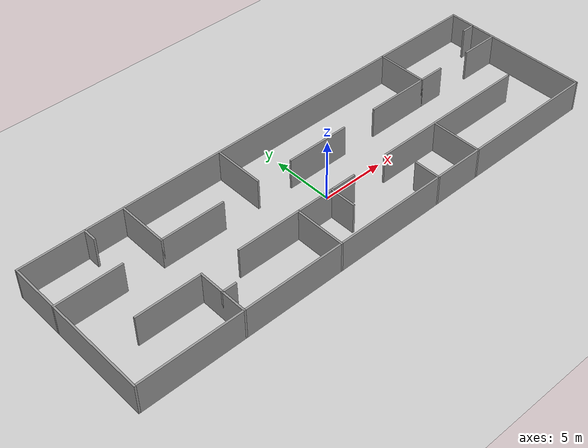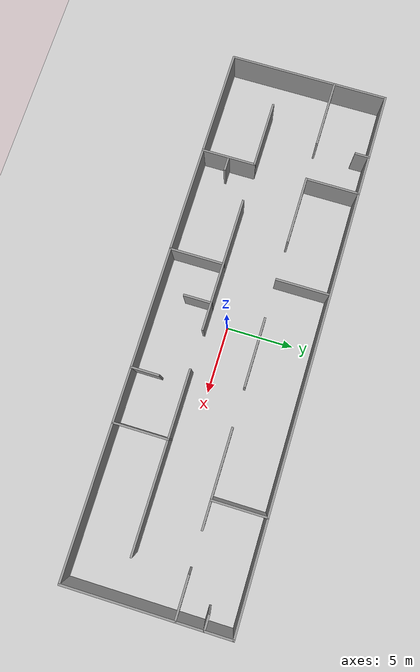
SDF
<sdf version="1.6">
 <world name="default">
  <light name="sun" type="directional">
   <pose>0 0 10 0 -0 0</pose>
   <diffuse>0.8 0.8 0.8 1</diffuse>
   <specular>0.1 0.1 0.1 1</specular>
   <attenuation>
    <range>1000</range>
    <constant>0.9</constant>
    <linear>0.01</linear>
    <quadratic>0.001</quadratic>
   </attenuation>
   <direction>-0.5 0.5 -1</direction>
  </light>
  <model name="ground_plane">
   <static>1</static>
   <link name="link">
    <collision name="collision">
     <geometry><plane><normal>0 0 1</normal><size>100 100</size></plane></geometry>
     <surface><friction><ode><mu>100</mu><mu2>50</mu2></ode></friction></surface>
    </collision>
    <visual name="visual">
     <cast_shadows>0</cast_shadows>
     <geometry><plane><normal>0 0 1</normal><size>100 100</size></plane></geometry>
     <material>
      <script><uri>file://media/materials/scripts/gazebo.material</uri><name>Gazebo/Grey</name></script>
     </material>
    </visual>
   </link>
  </model>
  <gravity>0 0 -9.8</gravity>
  <magnetic_field>6e-06 2.3e-05 -4.2e-05</magnetic_field>
  <atmosphere type="adiabatic"/>
  <physics name="default_physics" default="0" type="ode">
   <max_step_size>0.001</max_step_size>
   <real_time_factor>1</real_time_factor>
   <real_time_update_rate>1000</real_time_update_rate>
  </physics>
  <scene><ambient>0.4 0.4 0.4 1</ambient><background>0.7 0.7 0.7 1</background><shadows>1</shadows></scene>
  <spherical_coordinates>
   <surface_model>EARTH_WGS84</surface_model>
   <latitude_deg>0</latitude_deg>
   <longitude_deg>0</longitude_deg>
   <elevation>0</elevation>
   <heading_deg>0</heading_deg>
  </spherical_coordinates>
  <model name="test">
   <link name="Wall_0">
    <collision name="Wall_0_Collision">
     <geometry><box><size>40.15 0.15 2.5</size></box></geometry>
     <pose>0 0 1.25 0 -0 0</pose>
    </collision>
    <visual name="Wall_0_Visual">
     <pose>0 0 1.25 0 -0 0</pose>
     <geometry><box><size>40.15 0.15 2.5</size></box></geometry>
     <material>
      <script><uri>file://media/materials/scripts/gazebo.material</uri><name>Gazebo/Grey</name></script>
      <ambient>1 1 1 1</ambient>
     </material>
    </visual>
    <pose>0.0 6.5 0 0 -0 0.00000</pose>
   </link>
   <link name="Wall_1">
    <collision name="Wall_1_Collision">
     <geometry><box><size>1.15 0.15 2.5</size></box></geometry>
     <pose>0 0 1.25 0 -0 0</pose>
    </collision>
    <visual name="Wall_1_Visual">
     <pose>0 0 1.25 0 -0 0</pose>
     <geometry><box><size>1.15 0.15 2.5</size></box></geometry>
     <material>
      <script><uri>file://media/materials/scripts/gazebo.material</uri><name>Gazebo/Grey</name></script>
      <ambient>1 1 1 1</ambient>
     </material>
    </visual>
    <pose>19.5 4.5 0 0 -0 0.00000</pose>
   </link>
   <link name="Wall_2">
    <collision name="Wall_2_Collision">
     <geometry><box><size>5.15 0.15 2.5</size></box></geometry>
     <pose>0 0 1.25 0 -0 0</pose>
    </collision>
    <visual name="Wall_2_Visual">
     <pose>0 0 1.25 0 -0 0</pose>
     <geometry><box><size>5.15 0.15 2.5</size></box></geometry>
     <material>
      <script><uri>file://media/materials/scripts/gazebo.material</uri><name>Gazebo/Grey</name></script>
      <ambient>1 1 1 1</ambient>
     </material>
    </visual>
    <pose>-17.5 2.5 0 0 -0 0.00000</pose>
   </link>
   <link name="Wall_3">
    <collision name="Wall_3_Collision">
     <geometry><box><size>5.15 0.15 2.5</size></box></geometry>
     <pose>0 0 1.25 0 -0 0</pose>
    </collision>
    <visual name="Wall_3_Visual">
     <pose>0 0 1.25 0 -0 0</pose>
     <geometry><box><size>5.15 0.15 2.5</size></box></geometry>
     <material>
      <script><uri>file://media/materials/scripts/gazebo.material</uri><name>Gazebo/Grey</name></script>
      <ambient>1 1 1 1</ambient>
     </material>
    </visual>
    <pose>-9.5 2.5 0 0 -0 0.00000</pose>
   </link>
   <link name="Wall_4">
    <collision name="Wall_4_Collision">
     <geometry><box><size>5.15 0.15 2.5</size></box></geometry>
     <pose>0 0 1.25 0 -0 0</pose>
    </collision>
    <visual name="Wall_4_Visual">
     <pose>0 0 1.25 0 -0 0</pose>
     <geometry><box><size>5.15 0.15 2.5</size></box></geometry>
     <material>
      <script><uri>file://media/materials/scripts/gazebo.material</uri><name>Gazebo/Grey</name></script>
      <ambient>1 1 1 1</ambient>
     </material>
    </visual>
    <pose>1.5 2.5 0 0 -0 0.00000</pose>
   </link>
   <link name="Wall_5">
    <collision name="Wall_5_Collision">
     <geometry><box><size>7.15 0.15 2.5</size></box></geometry>
     <pose>0 0 1.25 0 -0 0</pose>
    </collision>
    <visual name="Wall_5_Visual">
     <pose>0 0 1.25 0 -0 0</pose>
     <geometry><box><size>7.15 0.15 2.5</size></box></geometry>
     <material>
      <script><uri>file://media/materials/scripts/gazebo.material</uri><name>Gazebo/Grey</name></script>
      <ambient>1 1 1 1</ambient>
     </material>
    </visual>
    <pose>10.5 2.5 0 0 -0 0.00000</pose>
   </link>
   <link name="Wall_6">
    <collision name="Wall_6_Collision">
     <geometry><box><size>3.15 0.15 2.5</size></box></geometry>
     <pose>0 0 1.25 0 -0 0</pose>
    </collision>
    <visual name="Wall_6_Visual">
     <pose>0 0 1.25 0 -0 0</pose>
     <geometry><box><size>3.15 0.15 2.5</size></box></geometry>
     <material>
      <script><uri>file://media/materials/scripts/gazebo.material</uri><name>Gazebo/Grey</name></script>
      <ambient>1 1 1 1</ambient>
     </material>
    </visual>
    <pose>18.5 2.5 0 0 -0 0.00000</pose>
   </link>
   <link name="Wall_7">
    <collision name="Wall_7_Collision">
     <geometry><box><size>5.15 0.15 2.5</size></box></geometry>
     <pose>0 0 1.25 0 -0 0</pose>
    </collision>
    <visual name="Wall_7_Visual">
     <pose>0 0 1.25 0 -0 0</pose>
     <geometry><box><size>5.15 0.15 2.5</size></box></geometry>
     <material>
      <script><uri>file://media/materials/scripts/gazebo.material</uri><name>Gazebo/Grey</name></script>
      <ambient>1 1 1 1</ambient>
     </material>
    </visual>
    <pose>-14.5 -1.5 0 0 -0 0.00000</pose>
   </link>
   <link name="Wall_8">
    <collision name="Wall_8_Collision">
     <geometry><box><size>10.15 0.15 2.5</size></box></geometry>
     <pose>0 0 1.25 0 -0 0</pose>
    </collision>
    <visual name="Wall_8_Visual">
     <pose>0 0 1.25 0 -0 0</pose>
     <geometry><box><size>10.15 0.15 2.5</size></box></geometry>
     <material>
      <script><uri>file://media/materials/scripts/gazebo.material</uri><name>Gazebo/Grey</name></script>
      <ambient>1 1 1 1</ambient>
     </material>
    </visual>
    <pose>-4.0 -1.5 0 0 -0 0.00000</pose>
   </link>
   <link name="Wall_9">
    <collision name="Wall_9_Collision">
     <geometry><box><size>13.15 0.15 2.5</size></box></geometry>
     <pose>0 0 1.25 0 -0 0</pose>
    </collision>
    <visual name="Wall_9_Visual">
     <pose>0 0 1.25 0 -0 0</pose>
     <geometry><box><size>13.15 0.15 2.5</size></box></geometry>
     <material>
      <script><uri>file://media/materials/scripts/gazebo.material</uri><name>Gazebo/Grey</name></script>
      <ambient>1 1 1 1</ambient>
     </material>
    </visual>
    <pose>10.5 -1.5 0 0 -0 0.00000</pose>
   </link>
   <link name="Wall_10">
    <collision name="Wall_10_Collision">
     <geometry><box><size>1.15 0.15 2.5</size></box></geometry>
     <pose>0 0 1.25 0 -0 0</pose>
    </collision>
    <visual name="Wall_10_Visual">
     <pose>0 0 1.25 0 -0 0</pose>
     <geometry><box><size>1.15 0.15 2.5</size></box></geometry>
     <material>
      <script><uri>file://media/materials/scripts/gazebo.material</uri><name>Gazebo/Grey</name></script>
      <ambient>1 1 1 1</ambient>
     </material>
    </visual>
    <pose>-11.5 -3.5 0 0 -0 0.00000</pose>
   </link>
   <link name="Wall_11">
    <collision name="Wall_11_Collision">
     <geometry><box><size>40.15 0.15 2.5</size></box></geometry>
     <pose>0 0 1.25 0 -0 0</pose>
    </collision>
    <visual name="Wall_11_Visual">
     <pose>0 0 1.25 0 -0 0</pose>
     <geometry><box><size>40.15 0.15 2.5</size></box></geometry>
     <material>
      <script><uri>file://media/materials/scripts/gazebo.material</uri><name>Gazebo/Grey</name></script>
      <ambient>1 1 1 1</ambient>
     </material>
    </visual>
    <pose>0.0 -5.5 0 0 -0 0.00000</pose>
   </link>
   <link name="Wall_12">
    <collision name="Wall_12_Collision">
     <geometry><box><size>12.15 0.15 2.5</size></box></geometry>
     <pose>0 0 1.25 0 -0 0</pose>
    </collision>
    <visual name="Wall_12_Visual">
     <pose>0 0 1.25 0 -0 0</pose>
     <geometry><box><size>12.15 0.15 2.5</size></box></geometry>
     <material>
      <script><uri>file://media/materials/scripts/gazebo.material</uri><name>Gazebo/Grey</name></script>
      <ambient>1 1 1 1</ambient>
     </material>
    </visual>
    <pose>-20.0 0.5 0 0 -0 -1.57080</pose>
   </link>
   <link name="Wall_13">
    <collision name="Wall_13_Collision">
     <geometry><box><size>1.15 0.15 2.5</size></box></geometry>
     <pose>0 0 1.25 0 -0 0</pose>
    </collision>
    <visual name="Wall_13_Visual">
     <pose>0 0 1.25 0 -0 0</pose>
     <geometry><box><size>1.15 0.15 2.5</size></box></geometry>
     <material>
      <script><uri>file://media/materials/scripts/gazebo.material</uri><name>Gazebo/Grey</name></script>
      <ambient>1 1 1 1</ambient>
     </material>
    </visual>
    <pose>-15.0 6.0 0 0 -0 -1.57080</pose>
   </link>
   <link name="Wall_14">
    <collision name="Wall_14_Collision">
     <geometry><box><size>4.15 0.15 2.5</size></box></geometry>
     <pose>0 0 1.25 0 -0 0</pose>
    </collision>
    <visual name="Wall_14_Visual">
     <pose>0 0 1.25 0 -0 0</pose>
     <geometry><box><size>4.15 0.15 2.5</size></box></geometry>
     <material>
      <script><uri>file://media/materials/scripts/gazebo.material</uri><name>Gazebo/Grey</name></script>
      <ambient>1 1 1 1</ambient>
     </material>
    </visual>
    <pose>-12.0 4.5 0 0 -0 -1.57080</pose>
   </link>
   <link name="Wall_15">
    <collision name="Wall_15_Collision">
     <geometry><box><size>4.15 0.15 2.5</size></box></geometry>
     <pose>0 0 1.25 0 -0 0</pose>
    </collision>
    <visual name="Wall_15_Visual">
     <pose>0 0 1.25 0 -0 0</pose>
     <geometry><box><size>4.15 0.15 2.5</size></box></geometry>
     <material>
      <script><uri>file://media/materials/scripts/gazebo.material</uri><name>Gazebo/Grey</name></script>
      <ambient>1 1 1 1</ambient>
     </material>
    </visual>
    <pose>-12.0 -3.5 0 0 -0 -1.57080</pose>
   </link>
   <link name="Wall_16">
    <collision name="Wall_16_Collision">
     <geometry><box><size>4.15 0.15 2.5</size></box></geometry>
     <pose>0 0 1.25 0 -0 0</pose>
    </collision>
    <visual name="Wall_16_Visual">
     <pose>0 0 1.25 0 -0 0</pose>
     <geometry><box><size>4.15 0.15 2.5</size></box></geometry>
     <material>
      <script><uri>file://media/materials/scripts/gazebo.material</uri><name>Gazebo/Grey</name></script>
      <ambient>1 1 1 1</ambient>
     </material>
    </visual>
    <pose>-4.0 4.5 0 0 -0 -1.57080</pose>
   </link>
   <link name="Wall_17">
    <collision name="Wall_17_Collision">
     <geometry><box><size>4.15 0.15 2.5</size></box></geometry>
     <pose>0 0 1.25 0 -0 0</pose>
    </collision>
    <visual name="Wall_17_Visual">
     <pose>0 0 1.25 0 -0 0</pose>
     <geometry><box><size>4.15 0.15 2.5</size></box></geometry>
     <material>
      <script><uri>file://media/materials/scripts/gazebo.material</uri><name>Gazebo/Grey</name></script>
      <ambient>1 1 1 1</ambient>
     </material>
    </visual>
    <pose>-4.0 -3.5 0 0 -0 -1.57080</pose>
   </link>
   <link name="Wall_18">
    <collision name="Wall_18_Collision">
     <geometry><box><size>2.15 0.15 2.5</size></box></geometry>
     <pose>0 0 1.25 0 -0 0</pose>
    </collision>
    <visual name="Wall_18_Visual">
     <pose>0 0 1.25 0 -0 0</pose>
     <geometry><box><size>2.15 0.15 2.5</size></box></geometry>
     <material>
      <script><uri>file://media/materials/scripts/gazebo.material</uri><name>Gazebo/Grey</name></script>
      <ambient>1 1 1 1</ambient>
     </material>
    </visual>
    <pose>-1.0 -2.5 0 0 -0 -1.57080</pose>
   </link>
   <link name="Wall_19">
    <collision name="Wall_19_Collision">
     <geometry><box><size>2.15 0.15 2.5</size></box></geometry>
     <pose>0 0 1.25 0 -0 0</pose>
    </collision>
    <visual name="Wall_19_Visual">
     <pose>0 0 1.25 0 -0 0</pose>
     <geometry><box><size>2.15 0.15 2.5</size></box></geometry>
     <material>
      <script><uri>file://media/materials/scripts/gazebo.material</uri><name>Gazebo/Grey</name></script>
      <ambient>1 1 1 1</ambient>
     </material>
    </visual>
    <pose>5.0 -4.5 0 0 -0 -1.57080</pose>
   </link>
   <link name="Wall_20">
    <collision name="Wall_20_Collision">
     <geometry><box><size>4.15 0.15 2.5</size></box></geometry>
     <pose>0 0 1.25 0 -0 0</pose>
    </collision>
    <visual name="Wall_20_Visual">
     <pose>0 0 1.25 0 -0 0</pose>
     <geometry><box><size>4.15 0.15 2.5</size></box></geometry>
     <material>
      <script><uri>file://media/materials/scripts/gazebo.material</uri><name>Gazebo/Grey</name></script>
      <ambient>1 1 1 1</ambient>
     </material>
    </visual>
    <pose>9.0 -3.5 0 0 -0 -1.57080</pose>
   </link>
   <link name="Wall_21">
    <collision name="Wall_21_Collision">
     <geometry><box><size>4.15 0.15 2.5</size></box></geometry>
     <pose>0 0 1.25 0 -0 0</pose>
    </collision>
    <visual name="Wall_21_Visual">
     <pose>0 0 1.25 0 -0 0</pose>
     <geometry><box><size>4.15 0.15 2.5</size></box></geometry>
     <material>
      <script><uri>file://media/materials/scripts/gazebo.material</uri><name>Gazebo/Grey</name></script>
      <ambient>1 1 1 1</ambient>
     </material>
    </visual>
    <pose>12.0 4.5 0 0 -0 -1.57080</pose>
   </link>
   <link name="Wall_22">
    <collision name="Wall_22_Collision">
     <geometry><box><size>12.15 0.15 2.5</size></box></geometry>
     <pose>0 0 1.25 0 -0 0</pose>
    </collision>
    <visual name="Wall_22_Visual">
     <pose>0 0 1.25 0 -0 0</pose>
     <geometry><box><size>12.15 0.15 2.5</size></box></geometry>
     <material>
      <script><uri>file://media/materials/scripts/gazebo.material</uri><name>Gazebo/Grey</name></script>
      <ambient>1 1 1 1</ambient>
     </material>
    </visual>
    <pose>20.0 0.5 0 0 -0 -1.57080</pose>
   </link>
   <static>1</static>
  </model>
 </world>
</sdf>
